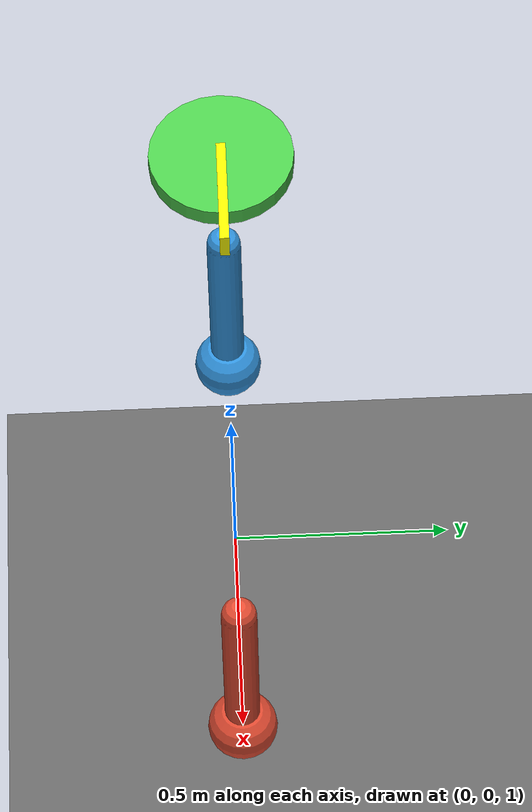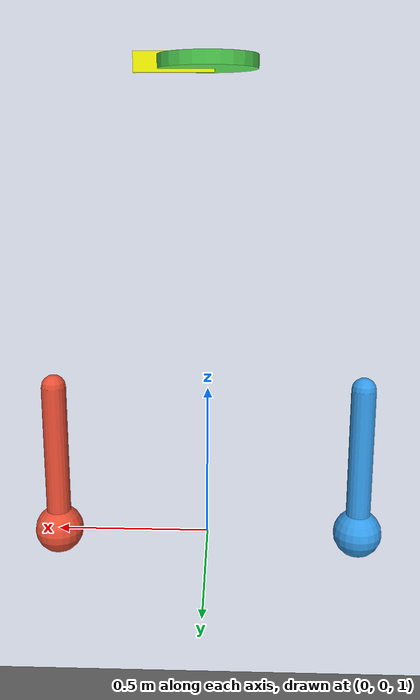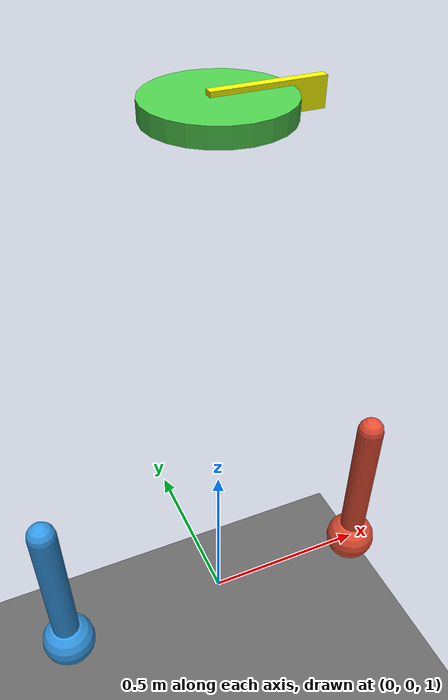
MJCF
<mujoco model="Time Sync Test">
  <option timestep="0.001"/>

  <worldbody>
    <light pos="0 0 3" dir="0 0 -1"/>
    <geom type="plane" size="2 2 0.1" rgba="0.4 0.4 0.4 1"/>

    <!-- Pendulum A: free oscillation reference (undamped) -->
    <body name="pendulum_a" pos="-0.5 0 1.5">
      <joint name="joint_a" type="hinge" axis="0 1 0" damping="0"/>
      <geom type="capsule" fromto="0 0 0 0 0 -0.5" size="0.04" rgba="0.2 0.6 0.9 1"/>
      <body pos="0 0 -0.5">
        <geom type="sphere" size="0.08" rgba="0.2 0.6 0.9 1"/>
      </body>
    </body>

    <!-- Pendulum B: actuated (control latency measurement) -->
    <body name="pendulum_b" pos="0.5 0 1.5">
      <joint name="joint_b" type="hinge" axis="0 1 0" damping="0.05"/>
      <geom type="capsule" fromto="0 0 0 0 0 -0.5" size="0.04" rgba="0.9 0.3 0.2 1"/>
      <body pos="0 0 -0.5">
        <geom type="sphere" size="0.08" rgba="0.9 0.3 0.2 1"/>
      </body>
    </body>

    <!-- Spinning wheel: continuous rotation for drift detection -->
    <body name="wheel" pos="0 0 2.5">
      <joint name="wheel_joint" type="hinge" axis="0 0 1" damping="0"/>
      <geom type="cylinder" size="0.15 0.02" rgba="0.3 0.8 0.3 1"/>
      <geom type="box" size="0.12 0.01 0.03" pos="0.1 0 0" rgba="1 1 0 1"/>
    </body>
  </worldbody>

  <actuator>
    <motor name="torque_b" joint="joint_b" gear="1"/>
    <motor name="torque_wheel" joint="wheel_joint" gear="0.1"/>
  </actuator>

  <sensor>
    <jointpos name="pos_a" joint="joint_a"/>
    <jointvel name="vel_a" joint="joint_a"/>
    <jointpos name="pos_b" joint="joint_b"/>
    <jointvel name="vel_b" joint="joint_b"/>
    <actuatorfrc name="frc_b" actuator="torque_b"/>
    <jointpos name="wheel_pos" joint="wheel_joint"/>
    <jointvel name="wheel_vel" joint="wheel_joint"/>
  </sensor>

  <keyframe>
    <key name="sync_test" qpos="0.5 0 0" qvel="0 0 6.283"/>
  </keyframe>
</mujoco>
